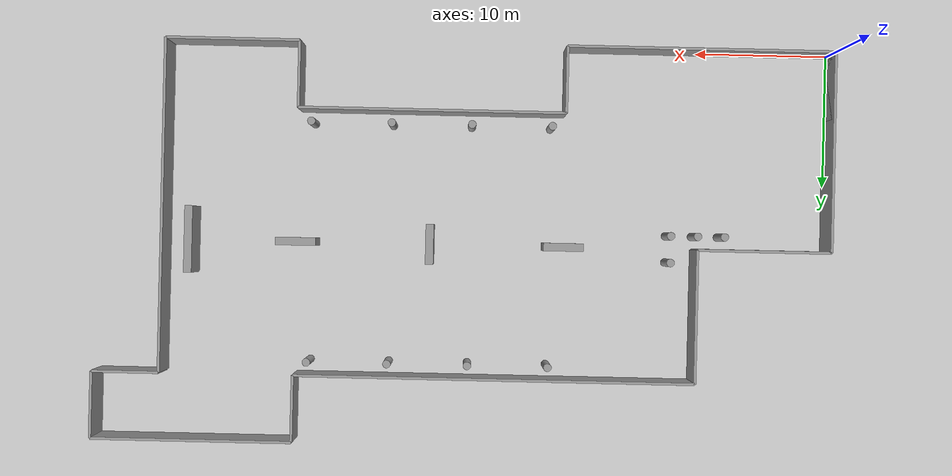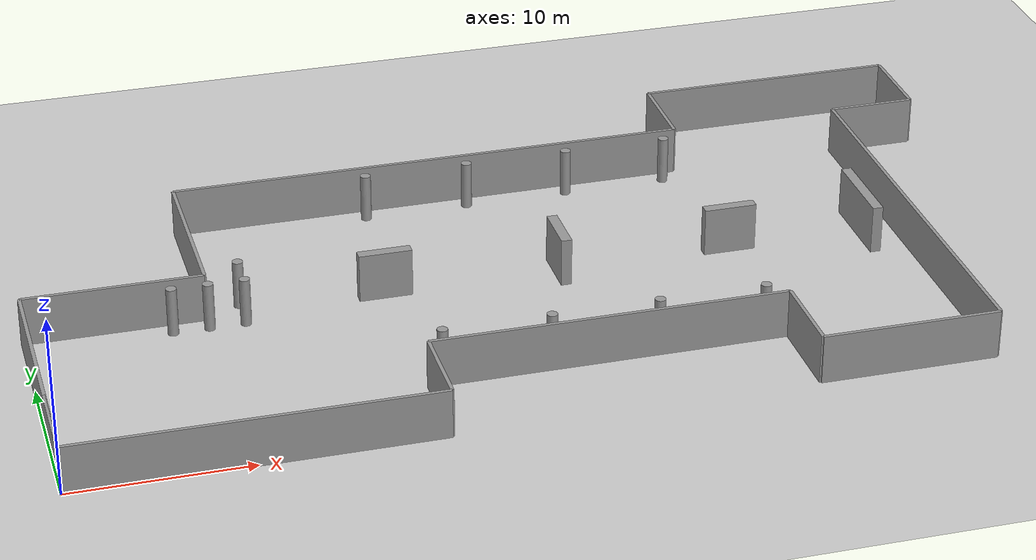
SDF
<?xml version="1.0" ?>
<sdf version="1.5">
      <world name="default">
      <include><uri>model://ground_plane</uri></include>
      <include><uri>model://sun</uri></include>

    <model name='wall_line_1'>
      <static>1</static>
      <link name='link'>

	  <pose frame=''>10.0 0.0 1.4 0 0 -0.0</pose>

        <collision name='collision'>
          <geometry>
            <box>
	     <size> 20.0 0.2 2.8 </size>

            </box>
          </geometry>
        </collision>

        <visual name='visual'>
          <cast_shadows>0</cast_shadows>
          <geometry>
            <box>
	     <size> 20.0 0.2 2.8 </size>

            </box>
          </geometry>
          <material>
            <script>
              <uri>model://grey_wall/materials/scripts</uri>
              <uri>model://grey_wall/materials/textures</uri>
              <name>vrc/grey_wall</name>
            </script>
          </material>
        </visual>
      </link>
    </model>

    <model name='wall_line_2'>
      <static>1</static>
      <link name='link'>

	  <pose frame=''>45.0 0.0 1.4 0 0 0.0</pose>

        <collision name='collision'>
          <geometry>
            <box>
	     <size> 10.0 0.2 2.8 </size>

            </box>
          </geometry>
        </collision>

        <visual name='visual'>
          <cast_shadows>0</cast_shadows>
          <geometry>
            <box>
	     <size> 10.0 0.2 2.8 </size>

            </box>
          </geometry>
          <material>
            <script>
              <uri>model://grey_wall/materials/scripts</uri>
              <uri>model://grey_wall/materials/textures</uri>
              <name>vrc/grey_wall</name>
            </script>
          </material>
        </visual>
      </link>
    </model>

    <model name='wall_line_3'>
      <static>1</static>
      <link name='link'>

	  <pose frame=''>30.0 5.0 1.4 0 0 0.0</pose>

        <collision name='collision'>
          <geometry>
            <box>
	     <size> 20.0 0.2 2.8 </size>

            </box>
          </geometry>
        </collision>

        <visual name='visual'>
          <cast_shadows>0</cast_shadows>
          <geometry>
            <box>
	     <size> 20.0 0.2 2.8 </size>

            </box>
          </geometry>
          <material>
            <script>
              <uri>model://grey_wall/materials/scripts</uri>
              <uri>model://grey_wall/materials/textures</uri>
              <name>vrc/grey_wall</name>
            </script>
          </material>
        </visual>
      </link>
    </model>

    <model name='wall_line_4'>
      <static>1</static>
      <link name='link'>

	  <pose frame=''>0.0 2.5 1.4 0 0 1.570796</pose>

        <collision name='collision'>
          <geometry>
            <box>
	     <size> 5.0 0.2 2.8 </size>

            </box>
          </geometry>
        </collision>

        <visual name='visual'>
          <cast_shadows>0</cast_shadows>
          <geometry>
            <box>
	     <size> 5.0 0.2 2.8 </size>

            </box>
          </geometry>
          <material>
            <script>
              <uri>model://grey_wall/materials/scripts</uri>
              <uri>model://grey_wall/materials/textures</uri>
              <name>vrc/grey_wall</name>
            </script>
          </material>
        </visual>
      </link>
    </model>

    <model name='wall_line_5'>
      <static>1</static>
      <link name='link'>

	  <pose frame=''>40.0 2.5 1.4 0 0 1.570796</pose>

        <collision name='collision'>
          <geometry>
            <box>
	     <size> 5.0 0.2 2.8 </size>

            </box>
          </geometry>
        </collision>

        <visual name='visual'>
          <cast_shadows>0</cast_shadows>
          <geometry>
            <box>
	     <size> 5.0 0.2 2.8 </size>

            </box>
          </geometry>
          <material>
            <script>
              <uri>model://grey_wall/materials/scripts</uri>
              <uri>model://grey_wall/materials/textures</uri>
              <name>vrc/grey_wall</name>
            </script>
          </material>
        </visual>
      </link>
    </model>

    <model name='wall_line_6'>
      <static>1</static>
      <link name='link'>

	  <pose frame=''>20.0 2.5 1.4 0 0 1.570796</pose>

        <collision name='collision'>
          <geometry>
            <box>
	     <size> 5.0 0.2 2.8 </size>

            </box>
          </geometry>
        </collision>

        <visual name='visual'>
          <cast_shadows>0</cast_shadows>
          <geometry>
            <box>
	     <size> 5.0 0.2 2.8 </size>

            </box>
          </geometry>
          <material>
            <script>
              <uri>model://grey_wall/materials/scripts</uri>
              <uri>model://grey_wall/materials/textures</uri>
              <name>vrc/grey_wall</name>
            </script>
          </material>
        </visual>
      </link>
    </model>

    <model name='wall_line_7'>
      <static>1</static>
      <link name='link'>

	  <pose frame=''>0.0 7.5 1.4 0 0 1.570796</pose>

        <collision name='collision'>
          <geometry>
            <box>
	     <size> 15.0 0.2 2.8 </size>

            </box>
          </geometry>
        </collision>

        <visual name='visual'>
          <cast_shadows>0</cast_shadows>
          <geometry>
            <box>
	     <size> 15.0 0.2 2.8 </size>

            </box>
          </geometry>
          <material>
            <script>
              <uri>model://grey_wall/materials/scripts</uri>
              <uri>model://grey_wall/materials/textures</uri>
              <name>vrc/grey_wall</name>
            </script>
          </material>
        </visual>
      </link>
    </model>

    <model name='wall_line_8'>
      <static>1</static>
      <link name='link'>

	  <pose frame=''>5.0 15.0 1.4 0 0 0.0</pose>

        <collision name='collision'>
          <geometry>
            <box>
	     <size> 10.0 0.2 2.8 </size>

            </box>
          </geometry>
        </collision>

        <visual name='visual'>
          <cast_shadows>0</cast_shadows>
          <geometry>
            <box>
	     <size> 10.0 0.2 2.8 </size>

            </box>
          </geometry>
          <material>
            <script>
              <uri>model://grey_wall/materials/scripts</uri>
              <uri>model://grey_wall/materials/textures</uri>
              <name>vrc/grey_wall</name>
            </script>
          </material>
        </visual>
      </link>
    </model>

    <model name='wall_line_9'>
      <static>1</static>
      <link name='link'>

	  <pose frame=''>10.0 20.0 1.4 0 0 1.570796</pose>

        <collision name='collision'>
          <geometry>
            <box>
	     <size> 10.0 0.2 2.8 </size>

            </box>
          </geometry>
        </collision>

        <visual name='visual'>
          <cast_shadows>0</cast_shadows>
          <geometry>
            <box>
	     <size> 10.0 0.2 2.8 </size>

            </box>
          </geometry>
          <material>
            <script>
              <uri>model://grey_wall/materials/scripts</uri>
              <uri>model://grey_wall/materials/textures</uri>
              <name>vrc/grey_wall</name>
            </script>
          </material>
        </visual>
      </link>
    </model>

    <model name='wall_line_10'>
      <static>1</static>
      <link name='link'>

	  <pose frame=''>25.0 25.0 1.4 0 0 0.0</pose>

        <collision name='collision'>
          <geometry>
            <box>
	     <size> 30.0 0.2 2.8 </size>

            </box>
          </geometry>
        </collision>

        <visual name='visual'>
          <cast_shadows>0</cast_shadows>
          <geometry>
            <box>
	     <size> 30.0 0.2 2.8 </size>

            </box>
          </geometry>
          <material>
            <script>
              <uri>model://grey_wall/materials/scripts</uri>
              <uri>model://grey_wall/materials/textures</uri>
              <name>vrc/grey_wall</name>
            </script>
          </material>
        </visual>
      </link>
    </model>

    <model name='wall_line_11'>
      <static>1</static>
      <link name='link'>

	  <pose frame=''>40.0 27.5 1.4 0 0 1.570796</pose>

        <collision name='collision'>
          <geometry>
            <box>
	     <size> 5.0 0.2 2.8 </size>

            </box>
          </geometry>
        </collision>

        <visual name='visual'>
          <cast_shadows>0</cast_shadows>
          <geometry>
            <box>
	     <size> 5.0 0.2 2.8 </size>

            </box>
          </geometry>
          <material>
            <script>
              <uri>model://grey_wall/materials/scripts</uri>
              <uri>model://grey_wall/materials/textures</uri>
              <name>vrc/grey_wall</name>
            </script>
          </material>
        </visual>
      </link>
    </model>

    <model name='wall_line_12'>
      <static>1</static>
      <link name='link'>

	  <pose frame=''>47.5 30.0 1.4 0 0 0.0</pose>

        <collision name='collision'>
          <geometry>
            <box>
	     <size> 15.0 0.2 2.8 </size>

            </box>
          </geometry>
        </collision>

        <visual name='visual'>
          <cast_shadows>0</cast_shadows>
          <geometry>
            <box>
	     <size> 15.0 0.2 2.8 </size>

            </box>
          </geometry>
          <material>
            <script>
              <uri>model://grey_wall/materials/scripts</uri>
              <uri>model://grey_wall/materials/textures</uri>
              <name>vrc/grey_wall</name>
            </script>
          </material>
        </visual>
      </link>
    </model>

    <model name='wall_line_13'>
      <static>1</static>
      <link name='link'>

	  <pose frame=''>52.5 25.0 1.4 0 0 0.0</pose>

        <collision name='collision'>
          <geometry>
            <box>
	     <size> 5.0 0.2 2.8 </size>

            </box>
          </geometry>
        </collision>

        <visual name='visual'>
          <cast_shadows>0</cast_shadows>
          <geometry>
            <box>
	     <size> 5.0 0.2 2.8 </size>

            </box>
          </geometry>
          <material>
            <script>
              <uri>model://grey_wall/materials/scripts</uri>
              <uri>model://grey_wall/materials/textures</uri>
              <name>vrc/grey_wall</name>
            </script>
          </material>
        </visual>
      </link>
    </model>

    <model name='wall_line_14'>
      <static>1</static>
      <link name='link'>

	  <pose frame=''>50.0 12.5 1.4 0 0 1.570796</pose>

        <collision name='collision'>
          <geometry>
            <box>
	     <size> 25.0 0.2 2.8 </size>

            </box>
          </geometry>
        </collision>

        <visual name='visual'>
          <cast_shadows>0</cast_shadows>
          <geometry>
            <box>
	     <size> 25.0 0.2 2.8 </size>

            </box>
          </geometry>
          <material>
            <script>
              <uri>model://grey_wall/materials/scripts</uri>
              <uri>model://grey_wall/materials/textures</uri>
              <name>vrc/grey_wall</name>
            </script>
          </material>
        </visual>
      </link>
    </model>

    <model name='wall_line_15'>
      <static>1</static>
      <link name='link'>

	  <pose frame=''>55.0 27.5 1.4 0 0 1.570796</pose>

        <collision name='collision'>
          <geometry>
            <box>
	     <size> 5.0 0.2 2.8 </size>

            </box>
          </geometry>
        </collision>

        <visual name='visual'>
          <cast_shadows>0</cast_shadows>
          <geometry>
            <box>
	     <size> 5.0 0.2 2.8 </size>

            </box>
          </geometry>
          <material>
            <script>
              <uri>model://grey_wall/materials/scripts</uri>
              <uri>model://grey_wall/materials/textures</uri>
              <name>vrc/grey_wall</name>
            </script>
          </material>
        </visual>
      </link>
    </model>

    <model name='wall_circle_16'>
      <static>1</static>
      <link name='link'>
        <pose frame=''>21.0 6.0 1.4 0 0 0</pose>

        <collision name='collision'>
          <geometry>
            <cylinder>
              <radius>0.3</radius>
              <length>2.8</length>
            </cylinder>
          </geometry>
        </collision>

        <visual name='visual'>
          <cast_shadows>0</cast_shadows>
          <geometry>
            <cylinder>
              <radius>0.3</radius>
              <length>2.8</length>
            </cylinder>
          </geometry>
          <material>
            <script>
              <uri>file://media/materials/scripts/gazebo.material</uri>
              <name>Gazebo/Grey</name>
            </script>
          </material>
        </visual>
      </link>
    </model>

    <model name='wall_circle_17'>
      <static>1</static>
      <link name='link'>
        <pose frame=''>27.0 6.0 1.4 0 0 0</pose>

        <collision name='collision'>
          <geometry>
            <cylinder>
              <radius>0.3</radius>
              <length>2.8</length>
            </cylinder>
          </geometry>
        </collision>

        <visual name='visual'>
          <cast_shadows>0</cast_shadows>
          <geometry>
            <cylinder>
              <radius>0.3</radius>
              <length>2.8</length>
            </cylinder>
          </geometry>
          <material>
            <script>
              <uri>file://media/materials/scripts/gazebo.material</uri>
              <name>Gazebo/Grey</name>
            </script>
          </material>
        </visual>
      </link>
    </model>

    <model name='wall_circle_18'>
      <static>1</static>
      <link name='link'>
        <pose frame=''>33.0 6.0 1.4 0 0 0</pose>

        <collision name='collision'>
          <geometry>
            <cylinder>
              <radius>0.3</radius>
              <length>2.8</length>
            </cylinder>
          </geometry>
        </collision>

        <visual name='visual'>
          <cast_shadows>0</cast_shadows>
          <geometry>
            <cylinder>
              <radius>0.3</radius>
              <length>2.8</length>
            </cylinder>
          </geometry>
          <material>
            <script>
              <uri>file://media/materials/scripts/gazebo.material</uri>
              <name>Gazebo/Grey</name>
            </script>
          </material>
        </visual>
      </link>
    </model>

    <model name='wall_circle_19'>
      <static>1</static>
      <link name='link'>
        <pose frame=''>39.0 6.0 1.4 0 0 0</pose>

        <collision name='collision'>
          <geometry>
            <cylinder>
              <radius>0.3</radius>
              <length>2.8</length>
            </cylinder>
          </geometry>
        </collision>

        <visual name='visual'>
          <cast_shadows>0</cast_shadows>
          <geometry>
            <cylinder>
              <radius>0.3</radius>
              <length>2.8</length>
            </cylinder>
          </geometry>
          <material>
            <script>
              <uri>file://media/materials/scripts/gazebo.material</uri>
              <name>Gazebo/Grey</name>
            </script>
          </material>
        </visual>
      </link>
    </model>

    <model name='wall_circle_20'>
      <static>1</static>
      <link name='link'>
        <pose frame=''>21.0 24.0 1.4 0 0 0</pose>

        <collision name='collision'>
          <geometry>
            <cylinder>
              <radius>0.3</radius>
              <length>2.8</length>
            </cylinder>
          </geometry>
        </collision>

        <visual name='visual'>
          <cast_shadows>0</cast_shadows>
          <geometry>
            <cylinder>
              <radius>0.3</radius>
              <length>2.8</length>
            </cylinder>
          </geometry>
          <material>
            <script>
              <uri>file://media/materials/scripts/gazebo.material</uri>
              <name>Gazebo/Grey</name>
            </script>
          </material>
        </visual>
      </link>
    </model>

    <model name='wall_circle_21'>
      <static>1</static>
      <link name='link'>
        <pose frame=''>27.0 24.0 1.4 0 0 0</pose>

        <collision name='collision'>
          <geometry>
            <cylinder>
              <radius>0.3</radius>
              <length>2.8</length>
            </cylinder>
          </geometry>
        </collision>

        <visual name='visual'>
          <cast_shadows>0</cast_shadows>
          <geometry>
            <cylinder>
              <radius>0.3</radius>
              <length>2.8</length>
            </cylinder>
          </geometry>
          <material>
            <script>
              <uri>file://media/materials/scripts/gazebo.material</uri>
              <name>Gazebo/Grey</name>
            </script>
          </material>
        </visual>
      </link>
    </model>

    <model name='wall_circle_22'>
      <static>1</static>
      <link name='link'>
        <pose frame=''>33.0 24.0 1.4 0 0 0</pose>

        <collision name='collision'>
          <geometry>
            <cylinder>
              <radius>0.3</radius>
              <length>2.8</length>
            </cylinder>
          </geometry>
        </collision>

        <visual name='visual'>
          <cast_shadows>0</cast_shadows>
          <geometry>
            <cylinder>
              <radius>0.3</radius>
              <length>2.8</length>
            </cylinder>
          </geometry>
          <material>
            <script>
              <uri>file://media/materials/scripts/gazebo.material</uri>
              <name>Gazebo/Grey</name>
            </script>
          </material>
        </visual>
      </link>
    </model>

    <model name='wall_circle_23'>
      <static>1</static>
      <link name='link'>
        <pose frame=''>39.0 24.0 1.4 0 0 0</pose>

        <collision name='collision'>
          <geometry>
            <cylinder>
              <radius>0.3</radius>
              <length>2.8</length>
            </cylinder>
          </geometry>
        </collision>

        <visual name='visual'>
          <cast_shadows>0</cast_shadows>
          <geometry>
            <cylinder>
              <radius>0.3</radius>
              <length>2.8</length>
            </cylinder>
          </geometry>
          <material>
            <script>
              <uri>file://media/materials/scripts/gazebo.material</uri>
              <name>Gazebo/Grey</name>
            </script>
          </material>
        </visual>
      </link>
    </model>

    <model name='wall_circle_24'>
      <static>1</static>
      <link name='link'>
        <pose frame=''>8.0 14.0 1.4 0 0 0</pose>

        <collision name='collision'>
          <geometry>
            <cylinder>
              <radius>0.3</radius>
              <length>2.8</length>
            </cylinder>
          </geometry>
        </collision>

        <visual name='visual'>
          <cast_shadows>0</cast_shadows>
          <geometry>
            <cylinder>
              <radius>0.3</radius>
              <length>2.8</length>
            </cylinder>
          </geometry>
          <material>
            <script>
              <uri>file://media/materials/scripts/gazebo.material</uri>
              <name>Gazebo/Grey</name>
            </script>
          </material>
        </visual>
      </link>
    </model>

    <model name='wall_circle_25'>
      <static>1</static>
      <link name='link'>
        <pose frame=''>10.0 14.0 1.4 0 0 0</pose>

        <collision name='collision'>
          <geometry>
            <cylinder>
              <radius>0.3</radius>
              <length>2.8</length>
            </cylinder>
          </geometry>
        </collision>

        <visual name='visual'>
          <cast_shadows>0</cast_shadows>
          <geometry>
            <cylinder>
              <radius>0.3</radius>
              <length>2.8</length>
            </cylinder>
          </geometry>
          <material>
            <script>
              <uri>file://media/materials/scripts/gazebo.material</uri>
              <name>Gazebo/Grey</name>
            </script>
          </material>
        </visual>
      </link>
    </model>

    <model name='wall_circle_26'>
      <static>1</static>
      <link name='link'>
        <pose frame=''>12.0 14.0 1.4 0 0 0</pose>

        <collision name='collision'>
          <geometry>
            <cylinder>
              <radius>0.3</radius>
              <length>2.8</length>
            </cylinder>
          </geometry>
        </collision>

        <visual name='visual'>
          <cast_shadows>0</cast_shadows>
          <geometry>
            <cylinder>
              <radius>0.3</radius>
              <length>2.8</length>
            </cylinder>
          </geometry>
          <material>
            <script>
              <uri>file://media/materials/scripts/gazebo.material</uri>
              <name>Gazebo/Grey</name>
            </script>
          </material>
        </visual>
      </link>
    </model>

    <model name='wall_circle_27'>
      <static>1</static>
      <link name='link'>
        <pose frame=''>12.0 16.0 1.4 0 0 0</pose>

        <collision name='collision'>
          <geometry>
            <cylinder>
              <radius>0.3</radius>
              <length>2.8</length>
            </cylinder>
          </geometry>
        </collision>

        <visual name='visual'>
          <cast_shadows>0</cast_shadows>
          <geometry>
            <cylinder>
              <radius>0.3</radius>
              <length>2.8</length>
            </cylinder>
          </geometry>
          <material>
            <script>
              <uri>file://media/materials/scripts/gazebo.material</uri>
              <name>Gazebo/Grey</name>
            </script>
          </material>
        </visual>
      </link>
    </model>

    <model name='wall_rect_28'>
      <static>1</static>
      <link name='link'>
        <pose frame=''>48.0 15.0 1.4 0 0 0.0</pose>

        <collision name='collision'>
          <geometry>
            <box>
              <size>0.6 5.0 2.8</size>
            </box>
          </geometry>
        </collision>

        <visual name='visual'>
          <cast_shadows>0</cast_shadows>
          <geometry>
            <box>
              <size>0.6 5.0 2.8</size>
            </box>
          </geometry>
          <material>
            <script>
              <uri>model://grey_wall/materials/scripts</uri>
              <uri>model://grey_wall/materials/textures</uri>
              <name>vrc/grey_wall</name>
            </script>
          </material>
        </visual>
      </link>
    </model>

    <model name='wall_rect_29'>
      <static>1</static>
      <link name='link'>
        <pose frame=''>20.0 15.0 1.4 0 0 0.0</pose>

        <collision name='collision'>
          <geometry>
            <box>
              <size>3.0 0.6 2.8</size>
            </box>
          </geometry>
        </collision>

        <visual name='visual'>
          <cast_shadows>0</cast_shadows>
          <geometry>
            <box>
              <size>3.0 0.6 2.8</size>
            </box>
          </geometry>
          <material>
            <script>
              <uri>model://grey_wall/materials/scripts</uri>
              <uri>model://grey_wall/materials/textures</uri>
              <name>vrc/grey_wall</name>
            </script>
          </material>
        </visual>
      </link>
    </model>

    <model name='wall_rect_30'>
      <static>1</static>
      <link name='link'>
        <pose frame=''>30.0 15.0 1.4 0 0 0.0</pose>

        <collision name='collision'>
          <geometry>
            <box>
              <size>0.6 3.0 2.8</size>
            </box>
          </geometry>
        </collision>

        <visual name='visual'>
          <cast_shadows>0</cast_shadows>
          <geometry>
            <box>
              <size>0.6 3.0 2.8</size>
            </box>
          </geometry>
          <material>
            <script>
              <uri>model://grey_wall/materials/scripts</uri>
              <uri>model://grey_wall/materials/textures</uri>
              <name>vrc/grey_wall</name>
            </script>
          </material>
        </visual>
      </link>
    </model>

    <model name='wall_rect_31'>
      <static>1</static>
      <link name='link'>
        <pose frame=''>40.0 15.0 1.4 0 0 0.0</pose>

        <collision name='collision'>
          <geometry>
            <box>
              <size>3.0 0.6 2.8</size>
            </box>
          </geometry>
        </collision>

        <visual name='visual'>
          <cast_shadows>0</cast_shadows>
          <geometry>
            <box>
              <size>3.0 0.6 2.8</size>
            </box>
          </geometry>
          <material>
            <script>
              <uri>model://grey_wall/materials/scripts</uri>
              <uri>model://grey_wall/materials/textures</uri>
              <name>vrc/grey_wall</name>
            </script>
          </material>
        </visual>
      </link>
    </model>

            <plugin name="ActorPosesPlugin" filename="libActorPosesPlugin.so"></plugin>
      </world>
    </sdf>
